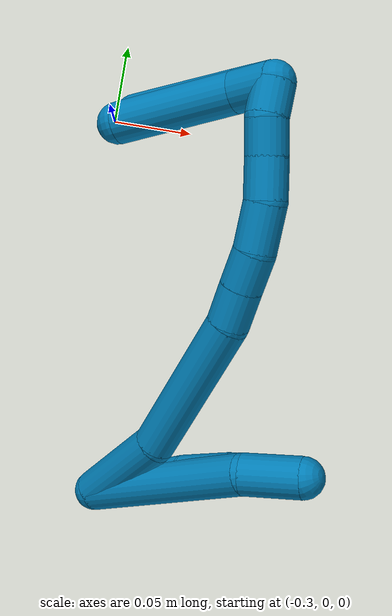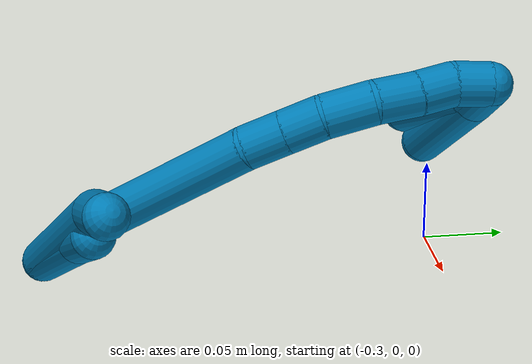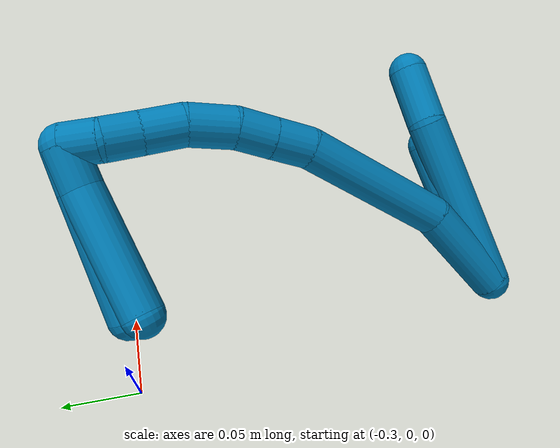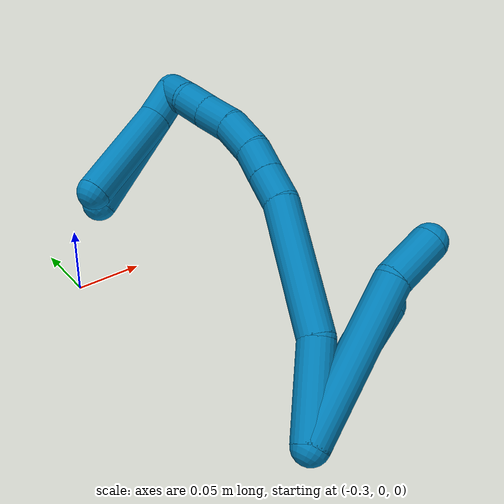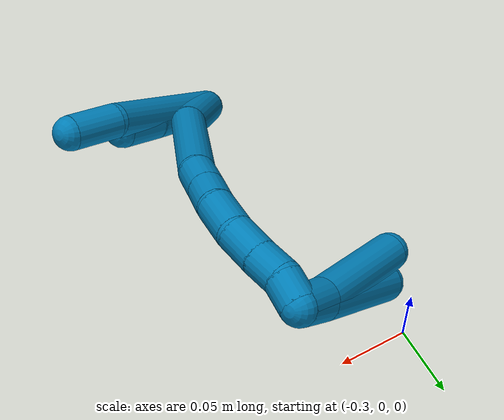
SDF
<sdf version="1.7">
 <world name="default">
  <model name="9">
   <static>0</static>
   <link name="9">
    <collision name="collision-cylinder-e_1_2_8">
     <pose>0.001132 0.00013 -0.056723 -3.13931 0.019956 -2.91357</pose>
     <geometry><cylinder><radius>0.0125</radius><length>0.113469</length></cylinder></geometry>
     <surface>
      <friction><ode><mu>1.16</mu><mu2>1.16</mu2><slip1>0</slip1><slip2>0</slip2></ode></friction>
      <contact><ode><kp>1e+06</kp><kd>1</kd><max_vel>0</max_vel><min_depth>0.001</min_depth></ode></contact>
     </surface>
    </collision>
    <visual name="visual-cylinder-e_1_2_8">
     <pose>0.001132 0.00013 -0.056723 -3.13931 0.019956 -2.91357</pose>
     <geometry><cylinder><radius>0.0125</radius><length>0.113469</length></cylinder></geometry>
     <material><ambient>0 0.490196 0.709804 1</ambient></material>
    </visual>
    <collision name="collision-cylinder-e_2_8_6">
     <pose>0.000791 -0.005466 -0.130728 2.82168 -0.080744 -0.490666</pose>
     <geometry><cylinder><radius>0.0125</radius><length>0.036531</length></cylinder></geometry>
     <surface>
      <friction><ode><mu>1.16</mu><mu2>1.16</mu2><slip1>0</slip1><slip2>0</slip2></ode></friction>
      <contact><ode><kp>1e+06</kp><kd>1</kd><max_vel>0</max_vel><min_depth>0.001</min_depth></ode></contact>
     </surface>
    </collision>
    <visual name="visual-cylinder-e_2_8_6">
     <pose>0.000791 -0.005466 -0.130728 2.82168 -0.080744 -0.490666</pose>
     <geometry><cylinder><radius>0.0125</radius><length>0.036531</length></cylinder></geometry>
     <material><ambient>0 0.490196 0.709804 1</ambient></material>
    </visual>
    <collision name="collision-cylinder-e_1_2_9">
     <pose>-0.002054 -0.000639 -0.033682 3.12263 -0.060899 -2.53813</pose>
     <geometry><cylinder><radius>0.0125</radius><length>0.067502</length></cylinder></geometry>
     <surface>
      <friction><ode><mu>1.16</mu><mu2>1.16</mu2><slip1>0</slip1><slip2>0</slip2></ode></friction>
      <contact><ode><kp>1e+06</kp><kd>1</kd><max_vel>0</max_vel><min_depth>0.001</min_depth></ode></contact>
     </surface>
    </collision>
    <visual name="visual-cylinder-e_1_2_9">
     <pose>-0.002054 -0.000639 -0.033682 3.12263 -0.060899 -2.53813</pose>
     <geometry><cylinder><radius>0.0125</radius><length>0.067502</length></cylinder></geometry>
     <material><ambient>0 0.490196 0.709804 1</ambient></material>
    </visual>
    <collision name="collision-cylinder-e_2_9_5">
     <pose>-0.004948 -0.00351 -0.083438 3.00356 -0.051719 -0.7161</pose>
     <geometry><cylinder><radius>0.0125</radius><length>0.032498</length></cylinder></geometry>
     <surface>
      <friction><ode><mu>1.16</mu><mu2>1.16</mu2><slip1>0</slip1><slip2>0</slip2></ode></friction>
      <contact><ode><kp>1e+06</kp><kd>1</kd><max_vel>0</max_vel><min_depth>0.001</min_depth></ode></contact>
     </surface>
    </collision>
    <visual name="visual-cylinder-e_2_9_5">
     <pose>-0.004948 -0.00351 -0.083438 3.00356 -0.051719 -0.7161</pose>
     <geometry><cylinder><radius>0.0125</radius><length>0.032498</length></cylinder></geometry>
     <material><ambient>0 0.490196 0.709804 1</ambient></material>
    </visual>
    <collision name="collision-cylinder-e_1_2_10">
     <pose>-0.004287 0.011675 -0.029511 -2.76487 -0.134275 0.678216</pose>
     <geometry><cylinder><radius>0.0125</radius><length>0.064049</length></cylinder></geometry>
     <surface>
      <friction><ode><mu>1.16</mu><mu2>1.16</mu2><slip1>0</slip1><slip2>0</slip2></ode></friction>
      <contact><ode><kp>1e+06</kp><kd>1</kd><max_vel>0</max_vel><min_depth>0.001</min_depth></ode></contact>
     </surface>
    </collision>
    <visual name="visual-cylinder-e_1_2_10">
     <pose>-0.004287 0.011675 -0.029511 -2.76487 -0.134275 0.678216</pose>
     <geometry><cylinder><radius>0.0125</radius><length>0.064049</length></cylinder></geometry>
     <material><ambient>0 0.490196 0.709804 1</ambient></material>
    </visual>
    <collision name="collision-cylinder-e_2_10_11">
     <pose>-0.023736 0.050219 -0.095494 -2.50666 -0.32297 0.920529</pose>
     <geometry><cylinder><radius>0.0125</radius><length>0.095541</length></cylinder></geometry>
     <surface>
      <friction><ode><mu>1.16</mu><mu2>1.16</mu2><slip1>0</slip1><slip2>0</slip2></ode></friction>
      <contact><ode><kp>1e+06</kp><kd>1</kd><max_vel>0</max_vel><min_depth>0.001</min_depth></ode></contact>
     </surface>
    </collision>
    <visual name="visual-cylinder-e_2_10_11">
     <pose>-0.023736 0.050219 -0.095494 -2.50666 -0.32297 0.920529</pose>
     <geometry><cylinder><radius>0.0125</radius><length>0.095541</length></cylinder></geometry>
     <material><ambient>0 0.490196 0.709804 1</ambient></material>
    </visual>
    <collision name="collision-cylinder-e_3_11_12">
     <pose>-0.044002 0.084921 -0.139067 -2.30721 -0.449798 0.952992</pose>
     <geometry><cylinder><radius>0.0125</radius><length>0.023481</length></cylinder></geometry>
     <surface>
      <friction><ode><mu>1.16</mu><mu2>1.16</mu2><slip1>0</slip1><slip2>0</slip2></ode></friction>
      <contact><ode><kp>1e+06</kp><kd>1</kd><max_vel>0</max_vel><min_depth>0.001</min_depth></ode></contact>
     </surface>
    </collision>
    <visual name="visual-cylinder-e_3_11_12">
     <pose>-0.044002 0.084921 -0.139067 -2.30721 -0.449798 0.952992</pose>
     <geometry><cylinder><radius>0.0125</radius><length>0.023481</length></cylinder></geometry>
     <material><ambient>0 0.490196 0.709804 1</ambient></material>
    </visual>
    <collision name="collision-cylinder-e_4_12_13">
     <pose>-0.053996 0.100147 -0.15305 -2.32049 -0.450858 0.969783</pose>
     <geometry><cylinder><radius>0.0125</radius><length>0.022442</length></cylinder></geometry>
     <surface>
      <friction><ode><mu>1.16</mu><mu2>1.16</mu2><slip1>0</slip1><slip2>0</slip2></ode></friction>
      <contact><ode><kp>1e+06</kp><kd>1</kd><max_vel>0</max_vel><min_depth>0.001</min_depth></ode></contact>
     </surface>
    </collision>
    <visual name="visual-cylinder-e_4_12_13">
     <pose>-0.053996 0.100147 -0.15305 -2.32049 -0.450858 0.969783</pose>
     <geometry><cylinder><radius>0.0125</radius><length>0.022442</length></cylinder></geometry>
     <material><ambient>0 0.490196 0.709804 1</ambient></material>
    </visual>
    <collision name="collision-cylinder-e_5_13_14">
     <pose>-0.066633 0.117411 -0.166231 -2.13874 -0.584452 1.00387</pose>
     <geometry><cylinder><radius>0.0125</radius><length>0.028082</length></cylinder></geometry>
     <surface>
      <friction><ode><mu>1.16</mu><mu2>1.16</mu2><slip1>0</slip1><slip2>0</slip2></ode></friction>
      <contact><ode><kp>1e+06</kp><kd>1</kd><max_vel>0</max_vel><min_depth>0.001</min_depth></ode></contact>
     </surface>
    </collision>
    <visual name="visual-cylinder-e_5_13_14">
     <pose>-0.066633 0.117411 -0.166231 -2.13874 -0.584452 1.00387</pose>
     <geometry><cylinder><radius>0.0125</radius><length>0.028082</length></cylinder></geometry>
     <material><ambient>0 0.490196 0.709804 1</ambient></material>
    </visual>
    <collision name="collision-cylinder-e_6_14_15">
     <pose>-0.082135 0.136474 -0.175264 -1.85985 -0.680052 0.885721</pose>
     <geometry><cylinder><radius>0.0125</radius><length>0.024667</length></cylinder></geometry>
     <surface>
      <friction><ode><mu>1.16</mu><mu2>1.16</mu2><slip1>0</slip1><slip2>0</slip2></ode></friction>
      <contact><ode><kp>1e+06</kp><kd>1</kd><max_vel>0</max_vel><min_depth>0.001</min_depth></ode></contact>
     </surface>
    </collision>
    <visual name="visual-cylinder-e_6_14_15">
     <pose>-0.082135 0.136474 -0.175264 -1.85985 -0.680052 0.885721</pose>
     <geometry><cylinder><radius>0.0125</radius><length>0.024667</length></cylinder></geometry>
     <material><ambient>0 0.490196 0.709804 1</ambient></material>
    </visual>
    <collision name="collision-cylinder-e_7_15_16">
     <pose>-0.096013 0.154062 -0.18041 -1.85058 -0.611294 0.793484</pose>
     <geometry><cylinder><radius>0.0125</radius><length>0.021335</length></cylinder></geometry>
     <surface>
      <friction><ode><mu>1.16</mu><mu2>1.16</mu2><slip1>0</slip1><slip2>0</slip2></ode></friction>
      <contact><ode><kp>1e+06</kp><kd>1</kd><max_vel>0</max_vel><min_depth>0.001</min_depth></ode></contact>
     </surface>
    </collision>
    <visual name="visual-cylinder-e_7_15_16">
     <pose>-0.096013 0.154062 -0.18041 -1.85058 -0.611294 0.793484</pose>
     <geometry><cylinder><radius>0.0125</radius><length>0.021335</length></cylinder></geometry>
     <material><ambient>0 0.490196 0.709804 1</ambient></material>
    </visual>
    <collision name="collision-cylinder-e_8_16_1">
     <pose>-0.110034 0.168279 -0.185616 -2.01838 -0.885473 1.29154</pose>
     <geometry><cylinder><radius>0.0125</radius><length>0.020403</length></cylinder></geometry>
     <surface>
      <friction><ode><mu>1.16</mu><mu2>1.16</mu2><slip1>0</slip1><slip2>0</slip2></ode></friction>
      <contact><ode><kp>1e+06</kp><kd>1</kd><max_vel>0</max_vel><min_depth>0.001</min_depth></ode></contact>
     </surface>
    </collision>
    <visual name="visual-cylinder-e_8_16_1">
     <pose>-0.110034 0.168279 -0.185616 -2.01838 -0.885473 1.29154</pose>
     <geometry><cylinder><radius>0.0125</radius><length>0.020403</length></cylinder></geometry>
     <material><ambient>0 0.490196 0.709804 1</ambient></material>
    </visual>
    <collision name="collision-cylinder-e_1_1_17">
     <pose>-0.119483 0.174456 -0.176283 -0.029369 -0.127183 0.00187</pose>
     <geometry><cylinder><radius>0.0125</radius><length>0.024464</length></cylinder></geometry>
     <surface>
      <friction><ode><mu>1.16</mu><mu2>1.16</mu2><slip1>0</slip1><slip2>0</slip2></ode></friction>
      <contact><ode><kp>1e+06</kp><kd>1</kd><max_vel>0</max_vel><min_depth>0.001</min_depth></ode></contact>
     </surface>
    </collision>
    <visual name="visual-cylinder-e_1_1_17">
     <pose>-0.119483 0.174456 -0.176283 -0.029369 -0.127183 0.00187</pose>
     <geometry><cylinder><radius>0.0125</radius><length>0.024464</length></cylinder></geometry>
     <material><ambient>0 0.490196 0.709804 1</ambient></material>
    </visual>
    <collision name="collision-cylinder-e_2_17_4">
     <pose>-0.12438 0.176376 -0.126568 -0.041583 -0.088684 0.001845</pose>
     <geometry><cylinder><radius>0.0125</radius><length>0.075536</length></cylinder></geometry>
     <surface>
      <friction><ode><mu>1.16</mu><mu2>1.16</mu2><slip1>0</slip1><slip2>0</slip2></ode></friction>
      <contact><ode><kp>1e+06</kp><kd>1</kd><max_vel>0</max_vel><min_depth>0.001</min_depth></ode></contact>
     </surface>
    </collision>
    <visual name="visual-cylinder-e_2_17_4">
     <pose>-0.12438 0.176376 -0.126568 -0.041583 -0.088684 0.001845</pose>
     <geometry><cylinder><radius>0.0125</radius><length>0.075536</length></cylinder></geometry>
     <material><ambient>0 0.490196 0.709804 1</ambient></material>
    </visual>
    <collision name="collision-cylinder-e_1_1_18">
     <pose>-0.118254 0.174697 -0.175764 -0.047191 -0.025434 0.0006</pose>
     <geometry><cylinder><radius>0.0125</radius><length>0.02533</length></cylinder></geometry>
     <surface>
      <friction><ode><mu>1.16</mu><mu2>1.16</mu2><slip1>0</slip1><slip2>0</slip2></ode></friction>
      <contact><ode><kp>1e+06</kp><kd>1</kd><max_vel>0</max_vel><min_depth>0.001</min_depth></ode></contact>
     </surface>
    </collision>
    <visual name="visual-cylinder-e_1_1_18">
     <pose>-0.118254 0.174697 -0.175764 -0.047191 -0.025434 0.0006</pose>
     <geometry><cylinder><radius>0.0125</radius><length>0.02533</length></cylinder></geometry>
     <material><ambient>0 0.490196 0.709804 1</ambient></material>
    </visual>
    <collision name="collision-cylinder-e_2_18_3">
     <pose>-0.113155 0.180145 -0.126497 -0.131713 0.145712 -0.009627</pose>
     <geometry><cylinder><radius>0.0125</radius><length>0.07467</length></cylinder></geometry>
     <surface>
      <friction><ode><mu>1.16</mu><mu2>1.16</mu2><slip1>0</slip1><slip2>0</slip2></ode></friction>
      <contact><ode><kp>1e+06</kp><kd>1</kd><max_vel>0</max_vel><min_depth>0.001</min_depth></ode></contact>
     </surface>
    </collision>
    <visual name="visual-cylinder-e_2_18_3">
     <pose>-0.113155 0.180145 -0.126497 -0.131713 0.145712 -0.009627</pose>
     <geometry><cylinder><radius>0.0125</radius><length>0.07467</length></cylinder></geometry>
     <material><ambient>0 0.490196 0.709804 1</ambient></material>
    </visual>
    <collision name="collision-sphere-3">
     <pose>-0.107734 0.184996 -0.089878 0 -0 0</pose>
     <geometry><sphere><radius>0.0125</radius></sphere></geometry>
     <surface>
      <friction><ode><mu>1.16</mu><mu2>1.16</mu2><slip1>0</slip1><slip2>0</slip2></ode></friction>
      <contact><ode><kp>1e+06</kp><kd>1</kd><max_vel>0</max_vel><min_depth>0.001</min_depth></ode></contact>
     </surface>
    </collision>
    <visual name="visual-sphere-3">
     <pose>-0.107734 0.184996 -0.089878 0 -0 0</pose>
     <geometry><sphere><radius>0.0125</radius></sphere></geometry>
     <material><ambient>0 0.490196 0.709804 1</ambient></material>
    </visual>
    <collision name="collision-sphere-10">
     <pose>-0.008574 0.02335 -0.059022 0 -0 0</pose>
     <geometry><sphere><radius>0.0125</radius></sphere></geometry>
     <surface>
      <friction><ode><mu>1.16</mu><mu2>1.16</mu2><slip1>0</slip1><slip2>0</slip2></ode></friction>
      <contact><ode><kp>1e+06</kp><kd>1</kd><max_vel>0</max_vel><min_depth>0.001</min_depth></ode></contact>
     </surface>
    </collision>
    <visual name="visual-sphere-10">
     <pose>-0.008574 0.02335 -0.059022 0 -0 0</pose>
     <geometry><sphere><radius>0.0125</radius></sphere></geometry>
     <material><ambient>0 0.490196 0.709804 1</ambient></material>
    </visual>
    <collision name="collision-sphere-5">
     <pose>-0.005788 -0.005743 -0.099511 0 -0 0</pose>
     <geometry><sphere><radius>0.0125</radius></sphere></geometry>
     <surface>
      <friction><ode><mu>1.16</mu><mu2>1.16</mu2><slip1>0</slip1><slip2>0</slip2></ode></friction>
      <contact><ode><kp>1e+06</kp><kd>1</kd><max_vel>0</max_vel><min_depth>0.001</min_depth></ode></contact>
     </surface>
    </collision>
    <visual name="visual-sphere-5">
     <pose>-0.005788 -0.005743 -0.099511 0 -0 0</pose>
     <geometry><sphere><radius>0.0125</radius></sphere></geometry>
     <material><ambient>0 0.490196 0.709804 1</ambient></material>
    </visual>
    <collision name="collision-sphere-6">
     <pose>-0.000682 -0.011192 -0.148011 0 -0 0</pose>
     <geometry><sphere><radius>0.0125</radius></sphere></geometry>
     <surface>
      <friction><ode><mu>1.16</mu><mu2>1.16</mu2><slip1>0</slip1><slip2>0</slip2></ode></friction>
      <contact><ode><kp>1e+06</kp><kd>1</kd><max_vel>0</max_vel><min_depth>0.001</min_depth></ode></contact>
     </surface>
    </collision>
    <visual name="visual-sphere-6">
     <pose>-0.000682 -0.011192 -0.148011 0 -0 0</pose>
     <geometry><sphere><radius>0.0125</radius></sphere></geometry>
     <material><ambient>0 0.490196 0.709804 1</ambient></material>
    </visual>
    <collision name="collision-sphere-9">
     <pose>-0.004108 -0.001277 -0.067365 0 -0 0</pose>
     <geometry><sphere><radius>0.0125</radius></sphere></geometry>
     <surface>
      <friction><ode><mu>1.16</mu><mu2>1.16</mu2><slip1>0</slip1><slip2>0</slip2></ode></friction>
      <contact><ode><kp>1e+06</kp><kd>1</kd><max_vel>0</max_vel><min_depth>0.001</min_depth></ode></contact>
     </surface>
    </collision>
    <visual name="visual-sphere-9">
     <pose>-0.004108 -0.001277 -0.067365 0 -0 0</pose>
     <geometry><sphere><radius>0.0125</radius></sphere></geometry>
     <material><ambient>0 0.490196 0.709804 1</ambient></material>
    </visual>
    <collision name="collision-sphere-2">
     <geometry><sphere><radius>0.0125</radius></sphere></geometry>
     <surface>
      <friction><ode><mu>1.16</mu><mu2>1.16</mu2><slip1>0</slip1><slip2>0</slip2></ode></friction>
      <contact><ode><kp>1e+06</kp><kd>1</kd><max_vel>0</max_vel><min_depth>0.001</min_depth></ode></contact>
     </surface>
    </collision>
    <visual name="visual-sphere-2">
     <geometry><sphere><radius>0.0125</radius></sphere></geometry>
     <material><ambient>0 0.490196 0.709804 1</ambient></material>
    </visual>
    <collision name="collision-sphere-8">
     <pose>0.002264 0.000259 -0.113446 0 -0 0</pose>
     <geometry><sphere><radius>0.0125</radius></sphere></geometry>
     <surface>
      <friction><ode><mu>1.16</mu><mu2>1.16</mu2><slip1>0</slip1><slip2>0</slip2></ode></friction>
      <contact><ode><kp>1e+06</kp><kd>1</kd><max_vel>0</max_vel><min_depth>0.001</min_depth></ode></contact>
     </surface>
    </collision>
    <visual name="visual-sphere-8">
     <pose>0.002264 0.000259 -0.113446 0 -0 0</pose>
     <geometry><sphere><radius>0.0125</radius></sphere></geometry>
     <material><ambient>0 0.490196 0.709804 1</ambient></material>
    </visual>
    <collision name="collision-sphere-11">
     <pose>-0.038898 0.077088 -0.131966 0 -0 0</pose>
     <geometry><sphere><radius>0.0125</radius></sphere></geometry>
     <surface>
      <friction><ode><mu>1.16</mu><mu2>1.16</mu2><slip1>0</slip1><slip2>0</slip2></ode></friction>
      <contact><ode><kp>1e+06</kp><kd>1</kd><max_vel>0</max_vel><min_depth>0.001</min_depth></ode></contact>
     </surface>
    </collision>
    <visual name="visual-sphere-11">
     <pose>-0.038898 0.077088 -0.131966 0 -0 0</pose>
     <geometry><sphere><radius>0.0125</radius></sphere></geometry>
     <material><ambient>0 0.490196 0.709804 1</ambient></material>
    </visual>
    <collision name="collision-sphere-12">
     <pose>-0.049107 0.092754 -0.146168 0 -0 0</pose>
     <geometry><sphere><radius>0.0125</radius></sphere></geometry>
     <surface>
      <friction><ode><mu>1.16</mu><mu2>1.16</mu2><slip1>0</slip1><slip2>0</slip2></ode></friction>
      <contact><ode><kp>1e+06</kp><kd>1</kd><max_vel>0</max_vel><min_depth>0.001</min_depth></ode></contact>
     </surface>
    </collision>
    <visual name="visual-sphere-12">
     <pose>-0.049107 0.092754 -0.146168 0 -0 0</pose>
     <geometry><sphere><radius>0.0125</radius></sphere></geometry>
     <material><ambient>0 0.490196 0.709804 1</ambient></material>
    </visual>
    <collision name="collision-sphere-13">
     <pose>-0.058886 0.107539 -0.159933 0 -0 0</pose>
     <geometry><sphere><radius>0.0125</radius></sphere></geometry>
     <surface>
      <friction><ode><mu>1.16</mu><mu2>1.16</mu2><slip1>0</slip1><slip2>0</slip2></ode></friction>
      <contact><ode><kp>1e+06</kp><kd>1</kd><max_vel>0</max_vel><min_depth>0.001</min_depth></ode></contact>
     </surface>
    </collision>
    <visual name="visual-sphere-13">
     <pose>-0.058886 0.107539 -0.159933 0 -0 0</pose>
     <geometry><sphere><radius>0.0125</radius></sphere></geometry>
     <material><ambient>0 0.490196 0.709804 1</ambient></material>
    </visual>
    <collision name="collision-sphere-14">
     <pose>-0.07438 0.127282 -0.17253 0 -0 0</pose>
     <geometry><sphere><radius>0.0125</radius></sphere></geometry>
     <surface>
      <friction><ode><mu>1.16</mu><mu2>1.16</mu2><slip1>0</slip1><slip2>0</slip2></ode></friction>
      <contact><ode><kp>1e+06</kp><kd>1</kd><max_vel>0</max_vel><min_depth>0.001</min_depth></ode></contact>
     </surface>
    </collision>
    <visual name="visual-sphere-14">
     <pose>-0.07438 0.127282 -0.17253 0 -0 0</pose>
     <geometry><sphere><radius>0.0125</radius></sphere></geometry>
     <material><ambient>0 0.490196 0.709804 1</ambient></material>
    </visual>
    <collision name="collision-sphere-15">
     <pose>-0.089891 0.145666 -0.177997 0 -0 0</pose>
     <geometry><sphere><radius>0.0125</radius></sphere></geometry>
     <surface>
      <friction><ode><mu>1.16</mu><mu2>1.16</mu2><slip1>0</slip1><slip2>0</slip2></ode></friction>
      <contact><ode><kp>1e+06</kp><kd>1</kd><max_vel>0</max_vel><min_depth>0.001</min_depth></ode></contact>
     </surface>
    </collision>
    <visual name="visual-sphere-15">
     <pose>-0.089891 0.145666 -0.177997 0 -0 0</pose>
     <geometry><sphere><radius>0.0125</radius></sphere></geometry>
     <material><ambient>0 0.490196 0.709804 1</ambient></material>
    </visual>
    <collision name="collision-sphere-16">
     <pose>-0.102136 0.162458 -0.182822 0 -0 0</pose>
     <geometry><sphere><radius>0.0125</radius></sphere></geometry>
     <surface>
      <friction><ode><mu>1.16</mu><mu2>1.16</mu2><slip1>0</slip1><slip2>0</slip2></ode></friction>
      <contact><ode><kp>1e+06</kp><kd>1</kd><max_vel>0</max_vel><min_depth>0.001</min_depth></ode></contact>
     </surface>
    </collision>
    <visual name="visual-sphere-16">
     <pose>-0.102136 0.162458 -0.182822 0 -0 0</pose>
     <geometry><sphere><radius>0.0125</radius></sphere></geometry>
     <material><ambient>0 0.490196 0.709804 1</ambient></material>
    </visual>
    <collision name="collision-sphere-1">
     <pose>-0.117932 0.174099 -0.188411 0 -0 0</pose>
     <geometry><sphere><radius>0.0125</radius></sphere></geometry>
     <surface>
      <friction><ode><mu>1.16</mu><mu2>1.16</mu2><slip1>0</slip1><slip2>0</slip2></ode></friction>
      <contact><ode><kp>1e+06</kp><kd>1</kd><max_vel>0</max_vel><min_depth>0.001</min_depth></ode></contact>
     </surface>
    </collision>
    <visual name="visual-sphere-1">
     <pose>-0.117932 0.174099 -0.188411 0 -0 0</pose>
     <geometry><sphere><radius>0.0125</radius></sphere></geometry>
     <material><ambient>0 0.490196 0.709804 1</ambient></material>
    </visual>
    <collision name="collision-sphere-18">
     <pose>-0.118576 0.175294 -0.163116 0 -0 0</pose>
     <geometry><sphere><radius>0.0125</radius></sphere></geometry>
     <surface>
      <friction><ode><mu>1.16</mu><mu2>1.16</mu2><slip1>0</slip1><slip2>0</slip2></ode></friction>
      <contact><ode><kp>1e+06</kp><kd>1</kd><max_vel>0</max_vel><min_depth>0.001</min_depth></ode></contact>
     </surface>
    </collision>
    <visual name="visual-sphere-18">
     <pose>-0.118576 0.175294 -0.163116 0 -0 0</pose>
     <geometry><sphere><radius>0.0125</radius></sphere></geometry>
     <material><ambient>0 0.490196 0.709804 1</ambient></material>
    </visual>
    <collision name="collision-sphere-17">
     <pose>-0.121035 0.174812 -0.164155 0 -0 0</pose>
     <geometry><sphere><radius>0.0125</radius></sphere></geometry>
     <surface>
      <friction><ode><mu>1.16</mu><mu2>1.16</mu2><slip1>0</slip1><slip2>0</slip2></ode></friction>
      <contact><ode><kp>1e+06</kp><kd>1</kd><max_vel>0</max_vel><min_depth>0.001</min_depth></ode></contact>
     </surface>
    </collision>
    <visual name="visual-sphere-17">
     <pose>-0.121035 0.174812 -0.164155 0 -0 0</pose>
     <geometry><sphere><radius>0.0125</radius></sphere></geometry>
     <material><ambient>0 0.490196 0.709804 1</ambient></material>
    </visual>
    <collision name="collision-sphere-4">
     <pose>-0.127725 0.17794 -0.088981 0 -0 0</pose>
     <geometry><sphere><radius>0.0125</radius></sphere></geometry>
     <surface>
      <friction><ode><mu>1.16</mu><mu2>1.16</mu2><slip1>0</slip1><slip2>0</slip2></ode></friction>
      <contact><ode><kp>1e+06</kp><kd>1</kd><max_vel>0</max_vel><min_depth>0.001</min_depth></ode></contact>
     </surface>
    </collision>
    <visual name="visual-sphere-4">
     <pose>-0.127725 0.17794 -0.088981 0 -0 0</pose>
     <geometry><sphere><radius>0.0125</radius></sphere></geometry>
     <material><ambient>0 0.490196 0.709804 1</ambient></material>
    </visual>
    <inertial>
     <pose>-0.049177 0.077728 -0.104412 0 -0 0</pose>
     <mass>0.75</mass>
     <inertia>
      <ixx>3.2e-05</ixx>
      <ixy>0</ixy>
      <ixz>0</ixz>
      <iyy>0.000222</iyy>
      <iyz>0</iyz>
      <izz>-5.1e-05</izz>
     </inertia>
    </inertial>
   </link>
   <pose>-0.271139 -0.236768 0.013809 2.42314 -0.69921 -1.8619</pose>
  </model>
 </world>
</sdf>
